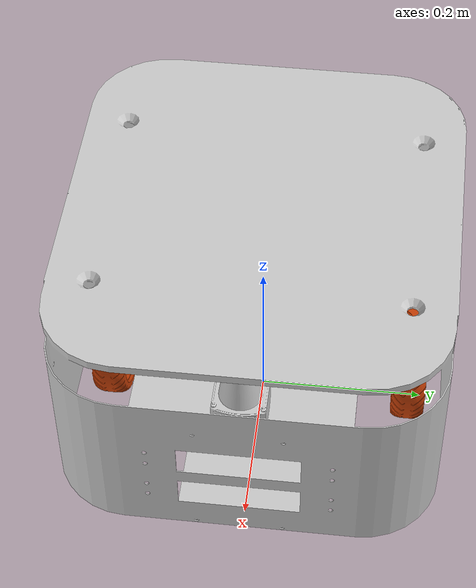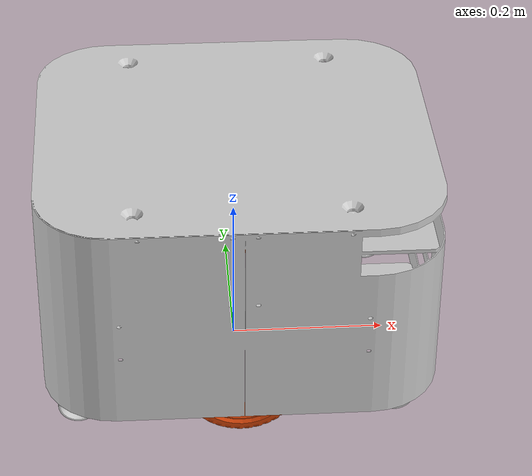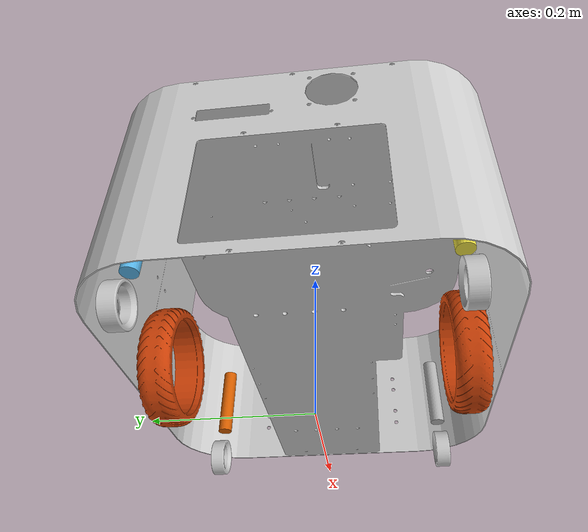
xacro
<?xml version="1.0"?>
<robot xmlns:xacro="http://ros.org/wiki/xacro" name="icube" >

  <!-- icube450 base -->
  <xacro:include filename="$(find icube_description)/urdf/include/icube_chassis.urdf.xacro" />

  <xacro:arg name="robot_namespace" default="" />

  <xacro:icube />

</robot>

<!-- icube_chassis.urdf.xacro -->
<robot xmlns:xacro="http://ros.org/wiki/xacro">
  <xacro:include filename="$(find icube_description)/urdf/include/common_properties.urdf.xacro" />
	<xacro:include filename="$(find icube_description)/urdf/include/sick_tim571.urdf.xacro" />

	<xacro:property name="deg_to_rad" value="0.017453293" />

	<!-- icube physical properties -->
	<xacro:property name="icube_chassis_mass" value="30.0" />

	<!-- icube actuated wheel (iwheel) -->
	<xacro:property name="icube_act_wheel_radius" value="0.077" />
  <xacro:property name="icube_act_wheel_width" value="0.04" />
  <xacro:property name="icube_act_wheel_mass" value="0.76" />
  <xacro:property name="icube_act_wheel_dx" value="0.0" />
  <xacro:property name="icube_act_wheel_dy" value="0.1845" />

	<!-- caster wheel physical properties -->
	<xacro:property name="icube_caster_wheel_radius" value="0.025" />
  <xacro:property name="icube_caster_wheel_width" value="0.0219" />
  <xacro:property name="icube_caster_wheel_mass" value="0.2" />
  <xacro:property name="icube_caster_wheel_dx" value="-0.005" />
  <xacro:property name="icube_caster_wheel_dy" value="0" />
  <xacro:property name="icube_caster_wheel_dz" value="-0.094" />

	<!-- caster hub/base physical properties -->
  <xacro:property name="icube_front_caster_wheel_base_dx" value="0.20045" />
  <xacro:property name="icube_back_caster_wheel_base_dx" value="-0.20045" />
  <xacro:property name="icube_caster_wheel_base_dy" value="0.165" />
  <xacro:property name="icube_caster_wheel_base_dz" value="${icube_caster_wheel_radius-icube_caster_wheel_dz}" />

	<!-- actuated wheel definition-->
	<xacro:macro name="actuated_wheel" params="locationprefix locationright">

		<!-- actuated wheel joint -->
    <joint name="${locationprefix}_wheel_joint" type="continuous">
      <origin xyz="0.0 ${-icube_act_wheel_dy * locationright} ${icube_act_wheel_radius - 0.0025}" rpy="0 0 0" />
      <parent link="base_link" />
      <child link="${locationprefix}_wheel_link" />
      <axis xyz="0 1 0" />
    </joint>

		<!-- actuated wheel link -->
    <link name="${locationprefix}_wheel_link">
      <xacro:cylinder_inertial mass="${icube_act_wheel_mass}" radius="${icube_act_wheel_radius}" length="${icube_act_wheel_width}">
        <origin xyz="0 0 0" rpy="${0.5 * pi} 0 0" />
      </xacro:cylinder_inertial>
      <visual>
        <origin xyz="0 0 0" rpy="${0.5 * pi} 0 0" />
        <geometry>
          <mesh filename="$(find icube_description)/meshes/wheel.dae" />
        </geometry>
      </visual>
      <collision>
        <origin xyz="0 0 0" rpy="${0.5 * pi} 0 0" />
        <geometry>
          <mesh filename="$(find icube_description)/meshes/wheel.dae" />
        </geometry>
      </collision>
    </link>
  </xacro:macro>

	<!-- caster hub/base and caster wheel definition -->
	<xacro:macro name="caster_wheel" params="locationprefix locationright wheel_base_dx">

    <!-- caster hub/base joint -->
    <joint name="${locationprefix}_caster_rotation_joint" type="continuous">
      <origin xyz="${wheel_base_dx} ${-icube_caster_wheel_base_dy * locationright} ${icube_caster_wheel_base_dz}" rpy="0 0 0" />
      <parent link="base_link" />
      <child link="${locationprefix}_caster_rotation_link" />
      <axis xyz="0 0 1" />
    </joint>

		<!-- caster hub/base link -->
    <link name="${locationprefix}_caster_rotation_link">
      <inertial>
        <origin xyz="0 0 -0.042500000044" rpy="${24 * deg_to_rad} 0 ${0.5 * pi} " />
        <mass value="0.3" />
        <inertia
          ixx="0.0005844517978"
          ixy="0"
          ixz="0"
          iyy="0.00052872551237"
          iyz="0"
          izz="0.00017923555074" />
      </inertial>
      <visual>
        <origin xyz="0 0 0" rpy="0 0 0" />
        <geometry>
            <cylinder length="0.1" radius="0.01"/>
        </geometry>
      </visual>
    </link>

    <!-- caster wheel -->
    <joint name="${locationprefix}_caster_wheel_joint" type="continuous">
      <origin xyz="${icube_caster_wheel_dx} ${-icube_caster_wheel_dy * locationright} ${icube_caster_wheel_dz}" rpy="0 0 0" />
      <parent link="${locationprefix}_caster_rotation_link" />
      <child link="${locationprefix}_caster_wheel_link" />
      <axis xyz="0 1 0" />
    </joint>

    <link name="${locationprefix}_caster_wheel_link">
      <xacro:cylinder_inertial mass="${icube_caster_wheel_mass}" radius="${icube_caster_wheel_radius}" length="${icube_caster_wheel_width}">
        <origin xyz="0 0 0" rpy="${0.5 * pi} 0 0" />
      </xacro:cylinder_inertial>
      <visual>
        <origin xyz="0 0 0" rpy="${0.5 * pi} 0 0" />
        <geometry>
          <mesh filename="$(find icube_description)/meshes/caster.dae" />
        </geometry>
      </visual>
      <collision>
        <origin xyz="0 0 0" rpy="${0.5 * pi} 0 0" />
        <geometry>
          <mesh filename="$(find icube_description)/meshes/caster.dae" />
        </geometry>
      </collision>
    </link>

  </xacro:macro>

	<!-- icube base -->
	<xacro:macro name="icube">
		<!-- base footprint-->
    <link name="base_footprint" />

    <joint name="base_joint" type="fixed">
      <parent link="base_footprint" />
      <child link="base_link" />
      <origin xyz="0 0 0" rpy="0 0 0" />
    </joint>

		<!-- base link -->
    <link name="base_link">
			<!-- base link inertial from box -->
      <xacro:box_inertial mass="${icube_chassis_mass}" x="0.498" y="0.453" z="0.273">
        <origin xyz="${icube_act_wheel_dx} 0 0.04218" rpy="0 0 0" />
      </xacro:box_inertial>

      <visual>
        <origin xyz="${icube_act_wheel_dx} 0 0.04218" rpy="0 0 0" />
        <geometry>
          <mesh filename="$(find icube_description)/meshes/chassis.dae" />
        </geometry>
      </visual>
      <collision>
        <origin xyz="${icube_act_wheel_dx} 0 0.04218" rpy="0 0 0" />
        <geometry>
          <mesh filename="$(find icube_description)/meshes/chassis.dae" />
        </geometry>
      </collision>
    </link>

    <!-- Laser scanners -->
    <joint name="base_link_to_front_laser_joint" type="fixed">
      <parent link="base_link" />
      <child link="front_laser_link" />
      <origin xyz=".21746 0 0.273" rpy="0 0 0" />
    </joint>
    <xacro:sick_tim571 link="front_laser_link" topic="scan" />

    <!-- actuated wheels -->
    <xacro:actuated_wheel locationprefix="left" locationright="-1"/>
    <xacro:actuated_wheel locationprefix="right" locationright="1"/>

		<!-- caster wheels -->
    <xacro:caster_wheel locationprefix="fl" locationright="-1" wheel_base_dx="${icube_front_caster_wheel_base_dx}"/>
    <xacro:caster_wheel locationprefix="fr" locationright="1" wheel_base_dx="${icube_front_caster_wheel_base_dx}"/>
    <xacro:caster_wheel locationprefix="bl" locationright="-1" wheel_base_dx="${icube_back_caster_wheel_base_dx}"/>
    <xacro:caster_wheel locationprefix="br" locationright="1" wheel_base_dx="${icube_back_caster_wheel_base_dx}"/>

    <joint name="base_link_surface_joint" type="fixed">
      <origin xyz="${icube_act_wheel_dx} 0 0.315" rpy="0 0 0" />
      <parent link="base_link" />
      <child link="surface" />
      <axis xyz="0 0 1" />
    </joint>

    <link name="surface"/>

    <gazebo>
      <plugin name='diff_drive' filename='libgazebo_ros_diff_drive.so'>
        <ros>
          <namespace>/demo</namespace>
        </ros>

        <!-- wheels -->
        <left_joint>left_wheel_joint</left_joint>
        <right_joint>right_wheel_joint</right_joint>

        <!-- kinematics -->
        <wheel_separation>${icube_act_wheel_dy*2}</wheel_separation>
        <wheel_diameter>${icube_act_wheel_radius*2}</wheel_diameter>

        <!-- limits -->
        <max_wheel_torque>20</max_wheel_torque>
        <max_wheel_acceleration>1.0</max_wheel_acceleration>

        <!-- output -->
        <publish_odom>true</publish_odom>
        <publish_odom_tf>false</publish_odom_tf>
        <publish_wheel_tf>true</publish_wheel_tf>

        <odometry_frame>odom</odometry_frame>
        <robot_base_frame>base_link</robot_base_frame>
      </plugin>
    </gazebo>

    <!-- set the gazebo friction parameters for the wheels -->

  </xacro:macro>
</robot>

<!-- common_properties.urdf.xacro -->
<!--
  Various useful properties such as constants and materials
 -->
<robot name="xacro_properties" xmlns:xacro="http://ros.org/wiki/xacro">
  <!-- #################### RViz materials #################### -->
  <xacro:property name="material_white">
    <material name="white">
      <color rgba="1 1 1 1"/>
    </material>
  </xacro:property>
  <xacro:property name="material_yellow">
    <material name="yellow">
      <color rgba="${255/255} ${226/255} ${0/255} 1"/>
    </material>
  </xacro:property>
  <xacro:property name="material_almost_white">
    <material name="almost_white">
      <color rgba="0.9 0.9 0.9 1" />
    </material>
  </xacro:property>
  <xacro:property name="material_grey">
    <material name="grey">
      <color rgba="0.5 0.5 0.5 1"/>
    </material>
  </xacro:property>
  <xacro:property name="material_light_grey">
    <material name="light_grey">
      <color rgba="0.6 0.6 0.6 1"/>
    </material>
  </xacro:property>
  <xacro:property name="material_dark_grey">
    <material name="dark_grey">
      <color rgba="0.3 0.3 0.3 1"/>
    </material>
  </xacro:property>
  <xacro:property name="material_black">
    <material name="black">
      <color rgba="0.1 0.1 0.1 1"/>
    </material>
  </xacro:property>
  <xacro:property name="material_aluminum">
    <material name="aluminum">
      <color rgba="0.8 0.8 0.8 1" />
    </material>
  </xacro:property>
  <xacro:property name="material_silver">
    <material name="silver">
      <color rgba="0.79 0.82 0.93 1" />
    </material>
  </xacro:property>

	  <!-- #################### inertials with origin #################### -->
  <!-- see https://secure.wikimedia.org/wikipedia/en/wiki/List_of_moment_of_inertia_tensors -->
  <xacro:macro name="sphere_inertial" params="radius mass *origin">
    <inertial>
      <mass value="${mass}" />
      <xacro:insert_block name="origin" />
      <inertia ixx="${0.4 * mass * radius * radius}" ixy="0.0" ixz="0.0"
        iyy="${0.4 * mass * radius * radius}" iyz="0.0"
        izz="${0.4 * mass * radius * radius}" />
    </inertial>
  </xacro:macro>

  <xacro:macro name="cylinder_inertial" params="radius length mass *origin">
    <inertial>
      <mass value="${mass}" />
      <xacro:insert_block name="origin" />
      <inertia ixx="${0.0833333 * mass * (3 * radius * radius + length * length)}" ixy="0.0" ixz="0.0"
        iyy="${0.0833333 * mass * (3 * radius * radius + length * length)}" iyz="0.0"
        izz="${0.5 * mass * radius * radius}" />
    </inertial>
  </xacro:macro>

  <xacro:macro name="box_inertial" params="x y z mass *origin">
    <inertial>
      <mass value="${mass}" />
      <xacro:insert_block name="origin" />
      <inertia ixx="${0.0833333 * mass * (y*y + z*z)}" ixy="0.0" ixz="0.0"
        iyy="${0.0833333 * mass * (x*x + z*z)}" iyz="0.0"
        izz="${0.0833333 * mass * (x*x + y*y)}" />
    </inertial>
  </xacro:macro>
</robot>

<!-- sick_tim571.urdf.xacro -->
<robot xmlns:xacro="http://ros.org/wiki/xacro">

  <xacro:include filename="$(find icube_description)/urdf/include/common_properties.urdf.xacro" />

	<!-- lidar approximate physical properties -->
  <xacro:property name="laser_x" value="0.08" />
  <xacro:property name="laser_y" value="0.08" />
  <xacro:property name="laser_z" value="0.12" />
  <xacro:property name="laser_mass" value="1.0" />

	<!-- sick tim571 -->
  <xacro:macro name="sick_tim571" params="link topic">
    <link name="${link}">
      <xacro:box_inertial x="${laser_x}" y="${laser_y}" z="${laser_z}" mass="${laser_mass}">
        <origin xyz="0 0 0" />
      </xacro:box_inertial>
      <visual>
        <origin xyz="0.0 0.0 0.0" rpy="0 0 0" />
        <geometry>
          <mesh filename="$(find icube_description)/meshes/lidar.dae" />
        </geometry>
      </visual>
      <collision>
        <origin xyz="0.0 0.0 0.0" rpy="${pi} 0 0" />
        <geometry>
          <mesh filename="$(find icube_description)/meshes/lidar.dae" />
        </geometry>
      </collision>
    </link>

		<!-- gazebo sensor plugin -->
    <gazebo reference="${link}">
      <sensor type="ray" name="${link}">
        <pose>0 0 0 0 0 0</pose>
        <visualize>true</visualize>
        <update_rate>15</update_rate>
        <ray>
          <scan>
            <horizontal>
              <samples>720</samples>
              <resolution>1</resolution>  <!-- has to be 1; actual resolution will be computed from number of samples + min_angle/max_angle -->
              <min_angle>${-pi*105/180}</min_angle>
              <max_angle>${pi*105/180}</max_angle>
            </horizontal>
          </scan>
          <range>
            <min>0.2</min>
            <max>25.0</max>
            <resolution>0.01</resolution>
          </range>
          <noise>
            <type>gaussian</type>
            <!-- Noise parameters based on published spec for tim571 achieving
                 "+-29mm" accuracy at range < 3m (~0.01 of the range) at
                 1 sigma. -->
            <mean>0.0</mean>
            <stddev>0.01</stddev>
          </noise>
        </ray>
        <plugin name="gazebo_ros_${link}_controller" filename="libgazebo_ros_ray_sensor.so">
          <frameName>${link}</frameName>
          <topicName>${topic}</topicName>
        </plugin>
      </sensor>
    </gazebo>
  </xacro:macro>
</robot>
